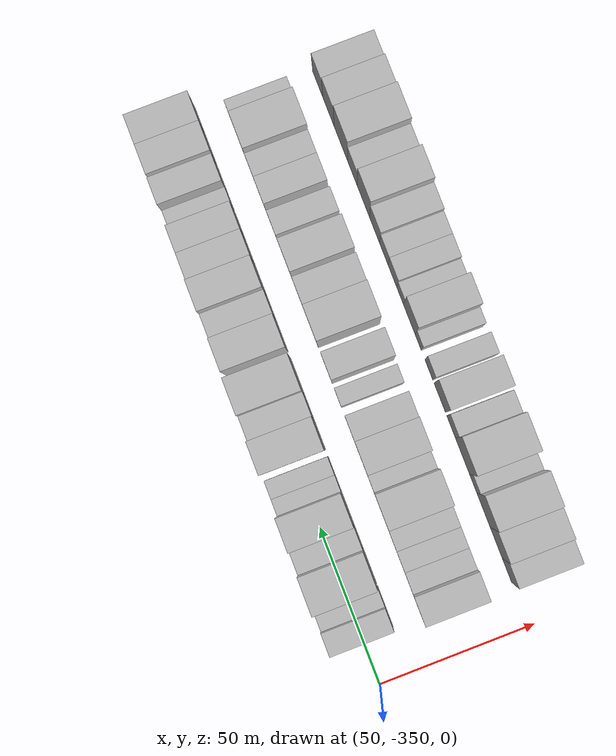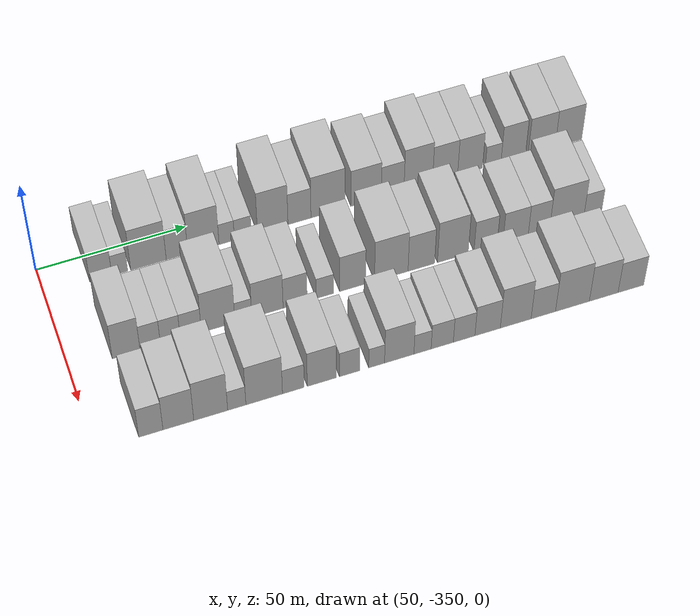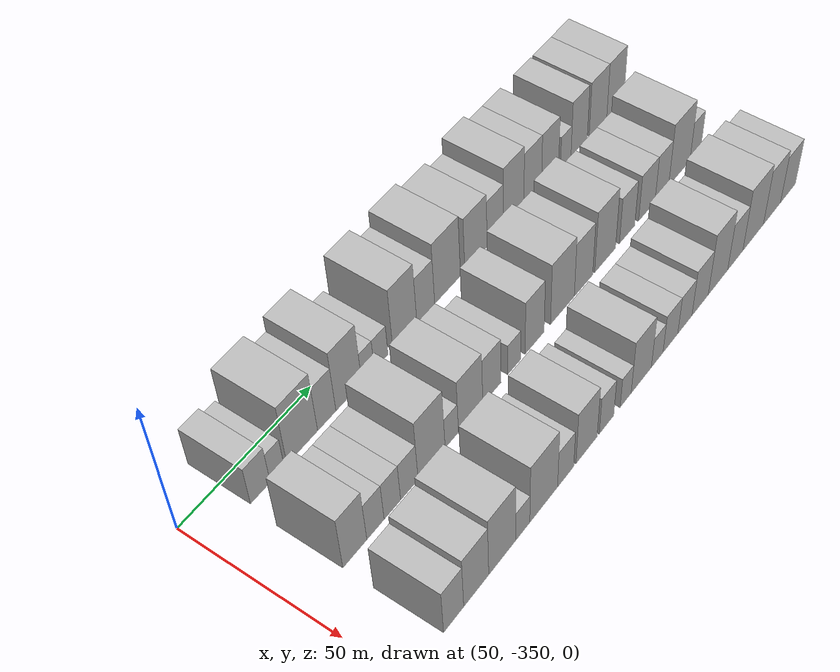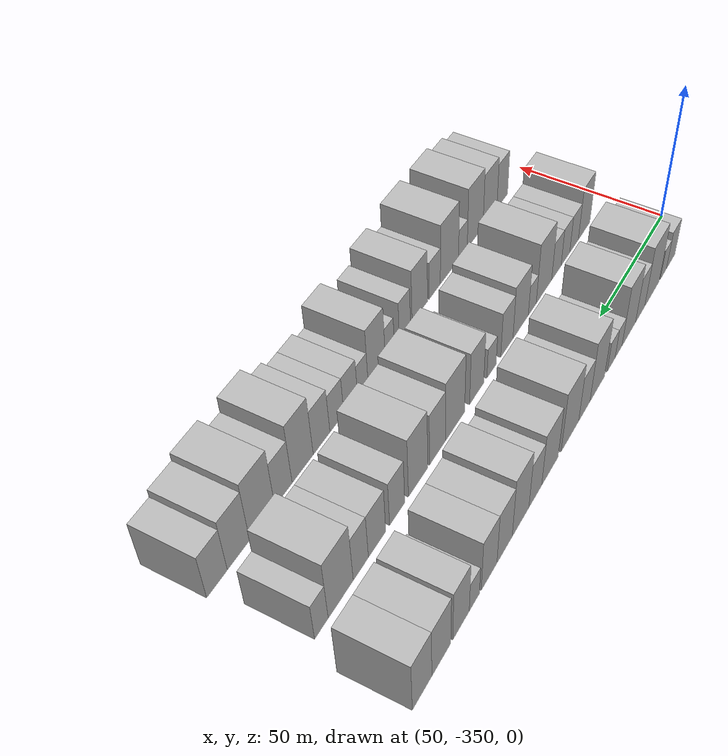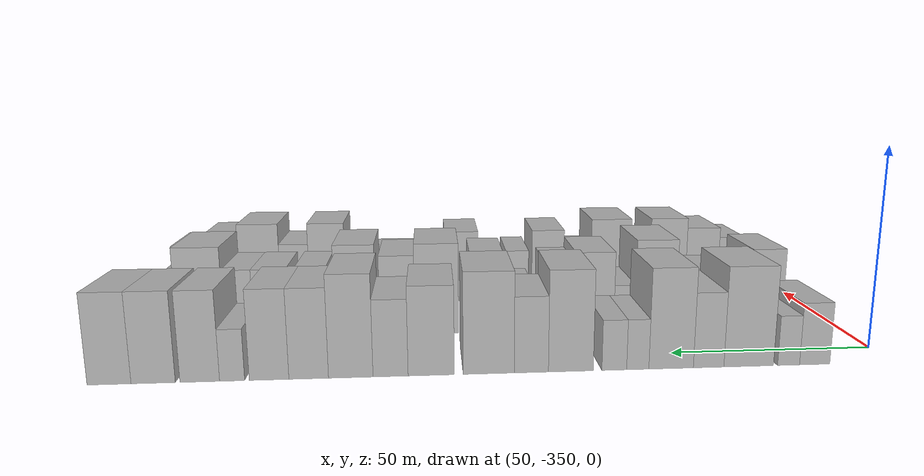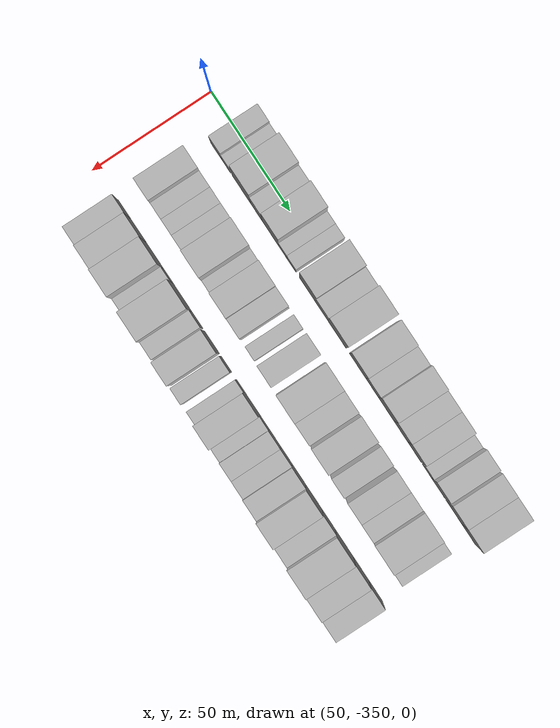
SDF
<sdf version="1.6">
 <world name="default">
  <model name="building_1">
   <static>1</static>
   <pose>50.0000 -331.3403 0 0.000000 0.000000 0.000000</pose>
   <link name="link">
    <pose>0 0 7.50 0 0 0</pose>
    <collision name="collision"><geometry><box><size>20.0000 7.3194 15.0000</size></box></geometry></collision>
    <visual name="visual">
     <cast_shadows>0</cast_shadows>
     <geometry><box><size>20.0000 7.3194 15.0000</size></box></geometry>
     <material>
      <script>
       <uri>model://HANNAS_wall/materials/scripts</uri>
       <uri>model://HANNAS_wall/materials/textures</uri>
       <name>vrc/HANNAS_wall</name>
      </script>
     </material>
    </visual>
   </link>
  </model>
  <model name="building_2">
   <static>1</static>
   <pose>50.0000 -325.0429 0 0.000000 0.000000 0.000000</pose>
   <link name="link">
    <pose>0 0 6.00 0 0 0</pose>
    <collision name="collision"><geometry><box><size>20.0000 5.2755 12.0000</size></box></geometry></collision>
    <visual name="visual">
     <cast_shadows>0</cast_shadows>
     <geometry><box><size>20.0000 5.2755 12.0000</size></box></geometry>
     <material>
      <script>
       <uri>model://HANNAS_wall/materials/scripts</uri>
       <uri>model://HANNAS_wall/materials/textures</uri>
       <name>vrc/HANNAS_wall</name>
      </script>
     </material>
    </visual>
   </link>
  </model>
  <model name="building_3">
   <static>1</static>
   <pose>50.0000 -315.4715 0 0.000000 0.000000 0.000000</pose>
   <link name="link">
    <pose>0 0 12.00 0 0 0</pose>
    <collision name="collision"><geometry><box><size>20.0000 11.8673 24.0000</size></box></geometry></collision>
    <visual name="visual">
     <cast_shadows>0</cast_shadows>
     <geometry><box><size>20.0000 11.8673 24.0000</size></box></geometry>
     <material>
      <script>
       <uri>model://HANNAS_wall/materials/scripts</uri>
       <uri>model://HANNAS_wall/materials/textures</uri>
       <name>vrc/HANNAS_wall</name>
      </script>
     </material>
    </visual>
   </link>
  </model>
  <model name="building_4">
   <static>1</static>
   <pose>50.0000 -305.9180 0 0.000000 0.000000 0.000000</pose>
   <link name="link">
    <pose>0 0 9.00 0 0 0</pose>
    <collision name="collision"><geometry><box><size>20.0000 7.2396 18.0000</size></box></geometry></collision>
    <visual name="visual">
     <cast_shadows>0</cast_shadows>
     <geometry><box><size>20.0000 7.2396 18.0000</size></box></geometry>
     <material>
      <script>
       <uri>model://HANNAS_wall/materials/scripts</uri>
       <uri>model://HANNAS_wall/materials/textures</uri>
       <name>vrc/HANNAS_wall</name>
      </script>
     </material>
    </visual>
   </link>
  </model>
  <model name="building_5">
   <static>1</static>
   <pose>50.0000 -297.0563 0 0.000000 0.000000 0.000000</pose>
   <link name="link">
    <pose>0 0 12.00 0 0 0</pose>
    <collision name="collision"><geometry><box><size>20.0000 10.4839 24.0000</size></box></geometry></collision>
    <visual name="visual">
     <cast_shadows>0</cast_shadows>
     <geometry><box><size>20.0000 10.4839 24.0000</size></box></geometry>
     <material>
      <script>
       <uri>model://HANNAS_wall/materials/scripts</uri>
       <uri>model://HANNAS_wall/materials/textures</uri>
       <name>vrc/HANNAS_wall</name>
      </script>
     </material>
    </visual>
   </link>
  </model>
  <model name="building_6">
   <static>1</static>
   <pose>50.0000 -289.2177 0 0.000000 0.000000 0.000000</pose>
   <link name="link">
    <pose>0 0 6.00 0 0 0</pose>
    <collision name="collision"><geometry><box><size>20.0000 5.1933 12.0000</size></box></geometry></collision>
    <visual name="visual">
     <cast_shadows>0</cast_shadows>
     <geometry><box><size>20.0000 5.1933 12.0000</size></box></geometry>
     <material>
      <script>
       <uri>model://HANNAS_wall/materials/scripts</uri>
       <uri>model://HANNAS_wall/materials/textures</uri>
       <name>vrc/HANNAS_wall</name>
      </script>
     </material>
    </visual>
   </link>
  </model>
  <model name="building_7">
   <static>1</static>
   <pose>50.0000 -283.7349 0 0.000000 0.000000 0.000000</pose>
   <link name="link">
    <pose>0 0 6.00 0 0 0</pose>
    <collision name="collision"><geometry><box><size>20.0000 5.7723 12.0000</size></box></geometry></collision>
    <visual name="visual">
     <cast_shadows>0</cast_shadows>
     <geometry><box><size>20.0000 5.7723 12.0000</size></box></geometry>
     <material>
      <script>
       <uri>model://HANNAS_wall/materials/scripts</uri>
       <uri>model://HANNAS_wall/materials/textures</uri>
       <name>vrc/HANNAS_wall</name>
      </script>
     </material>
    </visual>
   </link>
  </model>
  <model name="building_8">
   <static>1</static>
   <pose>50.0000 -273.6569 0 0.000000 0.000000 0.000000</pose>
   <link name="link">
    <pose>0 0 12.00 0 0 0</pose>
    <collision name="collision"><geometry><box><size>20.0000 10.3836 24.0000</size></box></geometry></collision>
    <visual name="visual">
     <cast_shadows>0</cast_shadows>
     <geometry><box><size>20.0000 10.3836 24.0000</size></box></geometry>
     <material>
      <script>
       <uri>model://HANNAS_wall/materials/scripts</uri>
       <uri>model://HANNAS_wall/materials/textures</uri>
       <name>vrc/HANNAS_wall</name>
      </script>
     </material>
    </visual>
   </link>
  </model>
  <model name="building_9">
   <static>1</static>
   <pose>50.0000 -264.5502 0 0.000000 0.000000 0.000000</pose>
   <link name="link">
    <pose>0 0 9.00 0 0 0</pose>
    <collision name="collision"><geometry><box><size>20.0000 7.8298 18.0000</size></box></geometry></collision>
    <visual name="visual">
     <cast_shadows>0</cast_shadows>
     <geometry><box><size>20.0000 7.8298 18.0000</size></box></geometry>
     <material>
      <script>
       <uri>model://HANNAS_wall/materials/scripts</uri>
       <uri>model://HANNAS_wall/materials/textures</uri>
       <name>vrc/HANNAS_wall</name>
      </script>
     </material>
    </visual>
   </link>
  </model>
  <model name="building_10">
   <static>1</static>
   <pose>50.0000 -254.8177 0 0.000000 0.000000 0.000000</pose>
   <link name="link">
    <pose>0 0 12.00 0 0 0</pose>
    <collision name="collision"><geometry><box><size>20.0000 11.6353 24.0000</size></box></geometry></collision>
    <visual name="visual">
     <cast_shadows>0</cast_shadows>
     <geometry><box><size>20.0000 11.6353 24.0000</size></box></geometry>
     <material>
      <script>
       <uri>model://HANNAS_wall/materials/scripts</uri>
       <uri>model://HANNAS_wall/materials/textures</uri>
       <name>vrc/HANNAS_wall</name>
      </script>
     </material>
    </visual>
   </link>
  </model>
  <model name="building_11">
   <static>1</static>
   <pose>50.0000 -241.7757 0 0.000000 0.000000 0.000000</pose>
   <link name="link">
    <pose>0 0 10.50 0 0 0</pose>
    <collision name="collision"><geometry><box><size>20.0000 10.4486 21.0000</size></box></geometry></collision>
    <visual name="visual">
     <cast_shadows>0</cast_shadows>
     <geometry><box><size>20.0000 10.4486 21.0000</size></box></geometry>
     <material>
      <script>
       <uri>model://HANNAS_wall/materials/scripts</uri>
       <uri>model://HANNAS_wall/materials/textures</uri>
       <name>vrc/HANNAS_wall</name>
      </script>
     </material>
    </visual>
   </link>
  </model>
  <model name="building_12">
   <static>1</static>
   <pose>50.0000 -232.6239 0 0.000000 0.000000 0.000000</pose>
   <link name="link">
    <pose>0 0 9.00 0 0 0</pose>
    <collision name="collision"><geometry><box><size>20.0000 7.8550 18.0000</size></box></geometry></collision>
    <visual name="visual">
     <cast_shadows>0</cast_shadows>
     <geometry><box><size>20.0000 7.8550 18.0000</size></box></geometry>
     <material>
      <script>
       <uri>model://HANNAS_wall/materials/scripts</uri>
       <uri>model://HANNAS_wall/materials/textures</uri>
       <name>vrc/HANNAS_wall</name>
      </script>
     </material>
    </visual>
   </link>
  </model>
  <model name="building_13">
   <static>1</static>
   <pose>50.0000 -223.7505 0 0.000000 0.000000 0.000000</pose>
   <link name="link">
    <pose>0 0 12.00 0 0 0</pose>
    <collision name="collision"><geometry><box><size>20.0000 9.8918 24.0000</size></box></geometry></collision>
    <visual name="visual">
     <cast_shadows>0</cast_shadows>
     <geometry><box><size>20.0000 9.8918 24.0000</size></box></geometry>
     <material>
      <script>
       <uri>model://HANNAS_wall/materials/scripts</uri>
       <uri>model://HANNAS_wall/materials/textures</uri>
       <name>vrc/HANNAS_wall</name>
      </script>
     </material>
    </visual>
   </link>
  </model>
  <model name="building_14">
   <static>1</static>
   <pose>50.0000 -214.4361 0 0.000000 0.000000 0.000000</pose>
   <link name="link">
    <pose>0 0 10.50 0 0 0</pose>
    <collision name="collision"><geometry><box><size>20.0000 8.7371 21.0000</size></box></geometry></collision>
    <visual name="visual">
     <cast_shadows>0</cast_shadows>
     <geometry><box><size>20.0000 8.7371 21.0000</size></box></geometry>
     <material>
      <script>
       <uri>model://HANNAS_wall/materials/scripts</uri>
       <uri>model://HANNAS_wall/materials/textures</uri>
       <name>vrc/HANNAS_wall</name>
      </script>
     </material>
    </visual>
   </link>
  </model>
  <model name="building_15">
   <static>1</static>
   <pose>50.0000 -205.7272 0 0.000000 0.000000 0.000000</pose>
   <link name="link">
    <pose>0 0 10.50 0 0 0</pose>
    <collision name="collision"><geometry><box><size>20.0000 8.6808 21.0000</size></box></geometry></collision>
    <visual name="visual">
     <cast_shadows>0</cast_shadows>
     <geometry><box><size>20.0000 8.6808 21.0000</size></box></geometry>
     <material>
      <script>
       <uri>model://HANNAS_wall/materials/scripts</uri>
       <uri>model://HANNAS_wall/materials/textures</uri>
       <name>vrc/HANNAS_wall</name>
      </script>
     </material>
    </visual>
   </link>
  </model>
  <model name="building_16">
   <static>1</static>
   <pose>50.0000 -197.6600 0 0.000000 0.000000 0.000000</pose>
   <link name="link">
    <pose>0 0 6.00 0 0 0</pose>
    <collision name="collision"><geometry><box><size>20.0000 5.4535 12.0000</size></box></geometry></collision>
    <visual name="visual">
     <cast_shadows>0</cast_shadows>
     <geometry><box><size>20.0000 5.4535 12.0000</size></box></geometry>
     <material>
      <script>
       <uri>model://HANNAS_wall/materials/scripts</uri>
       <uri>model://HANNAS_wall/materials/textures</uri>
       <name>vrc/HANNAS_wall</name>
      </script>
     </material>
    </visual>
   </link>
  </model>
  <model name="building_17">
   <static>1</static>
   <pose>50.0000 -190.6445 0 0.000000 0.000000 0.000000</pose>
   <link name="link">
    <pose>0 0 10.50 0 0 0</pose>
    <collision name="collision"><geometry><box><size>20.0000 8.5775 21.0000</size></box></geometry></collision>
    <visual name="visual">
     <cast_shadows>0</cast_shadows>
     <geometry><box><size>20.0000 8.5775 21.0000</size></box></geometry>
     <material>
      <script>
       <uri>model://HANNAS_wall/materials/scripts</uri>
       <uri>model://HANNAS_wall/materials/textures</uri>
       <name>vrc/HANNAS_wall</name>
      </script>
     </material>
    </visual>
   </link>
  </model>
  <model name="building_18">
   <static>1</static>
   <pose>50.0000 -180.6054 0 0.000000 0.000000 0.000000</pose>
   <link name="link">
    <pose>0 0 10.50 0 0 0</pose>
    <collision name="collision"><geometry><box><size>20.0000 9.5007 21.0000</size></box></geometry></collision>
    <visual name="visual">
     <cast_shadows>0</cast_shadows>
     <geometry><box><size>20.0000 9.5007 21.0000</size></box></geometry>
     <material>
      <script>
       <uri>model://HANNAS_wall/materials/scripts</uri>
       <uri>model://HANNAS_wall/materials/textures</uri>
       <name>vrc/HANNAS_wall</name>
      </script>
     </material>
    </visual>
   </link>
  </model>
  <model name="building_19">
   <static>1</static>
   <pose>50.0000 -171.1676 0 0.000000 0.000000 0.000000</pose>
   <link name="link">
    <pose>0 0 10.50 0 0 0</pose>
    <collision name="collision"><geometry><box><size>20.0000 9.3747 21.0000</size></box></geometry></collision>
    <visual name="visual">
     <cast_shadows>0</cast_shadows>
     <geometry><box><size>20.0000 9.3747 21.0000</size></box></geometry>
     <material>
      <script>
       <uri>model://HANNAS_wall/materials/scripts</uri>
       <uri>model://HANNAS_wall/materials/textures</uri>
       <name>vrc/HANNAS_wall</name>
      </script>
     </material>
    </visual>
   </link>
  </model>
  <model name="building_74">
   <static>1</static>
   <pose>79.0000 -331.4682 0 0.000000 0.000000 0.000000</pose>
   <link name="link">
    <pose>0 0 10.50 0 0 0</pose>
    <collision name="collision"><geometry><box><size>20.0000 9.0637 21.0000</size></box></geometry></collision>
    <visual name="visual">
     <cast_shadows>0</cast_shadows>
     <geometry><box><size>20.0000 9.0637 21.0000</size></box></geometry>
     <material>
      <script>
       <uri>model://HANNAS_wall/materials/scripts</uri>
       <uri>model://HANNAS_wall/materials/textures</uri>
       <name>vrc/HANNAS_wall</name>
      </script>
     </material>
    </visual>
   </link>
  </model>
  <model name="building_75">
   <static>1</static>
   <pose>79.0000 -323.6014 0 0.000000 0.000000 0.000000</pose>
   <link name="link">
    <pose>0 0 7.50 0 0 0</pose>
    <collision name="collision"><geometry><box><size>20.0000 6.6699 15.0000</size></box></geometry></collision>
    <visual name="visual">
     <cast_shadows>0</cast_shadows>
     <geometry><box><size>20.0000 6.6699 15.0000</size></box></geometry>
     <material>
      <script>
       <uri>model://HANNAS_wall/materials/scripts</uri>
       <uri>model://HANNAS_wall/materials/textures</uri>
       <name>vrc/HANNAS_wall</name>
      </script>
     </material>
    </visual>
   </link>
  </model>
  <model name="building_76">
   <static>1</static>
   <pose>79.0000 -317.0089 0 0.000000 0.000000 0.000000</pose>
   <link name="link">
    <pose>0 0 7.50 0 0 0</pose>
    <collision name="collision"><geometry><box><size>20.0000 6.5151 15.0000</size></box></geometry></collision>
    <visual name="visual">
     <cast_shadows>0</cast_shadows>
     <geometry><box><size>20.0000 6.5151 15.0000</size></box></geometry>
     <material>
      <script>
       <uri>model://HANNAS_wall/materials/scripts</uri>
       <uri>model://HANNAS_wall/materials/textures</uri>
       <name>vrc/HANNAS_wall</name>
      </script>
     </material>
    </visual>
   </link>
  </model>
  <model name="building_77">
   <static>1</static>
   <pose>79.0000 -310.2614 0 0.000000 0.000000 0.000000</pose>
   <link name="link">
    <pose>0 0 7.50 0 0 0</pose>
    <collision name="collision"><geometry><box><size>20.0000 6.9800 15.0000</size></box></geometry></collision>
    <visual name="visual">
     <cast_shadows>0</cast_shadows>
     <geometry><box><size>20.0000 6.9800 15.0000</size></box></geometry>
     <material>
      <script>
       <uri>model://HANNAS_wall/materials/scripts</uri>
       <uri>model://HANNAS_wall/materials/textures</uri>
       <name>vrc/HANNAS_wall</name>
      </script>
     </material>
    </visual>
   </link>
  </model>
  <model name="building_78">
   <static>1</static>
   <pose>79.0000 -301.2172 0 0.000000 0.000000 0.000000</pose>
   <link name="link">
    <pose>0 0 12.00 0 0 0</pose>
    <collision name="collision"><geometry><box><size>20.0000 11.1084 24.0000</size></box></geometry></collision>
    <visual name="visual">
     <cast_shadows>0</cast_shadows>
     <geometry><box><size>20.0000 11.1084 24.0000</size></box></geometry>
     <material>
      <script>
       <uri>model://HANNAS_wall/materials/scripts</uri>
       <uri>model://HANNAS_wall/materials/textures</uri>
       <name>vrc/HANNAS_wall</name>
      </script>
     </material>
    </visual>
   </link>
  </model>
  <model name="building_79">
   <static>1</static>
   <pose>79.0000 -292.8633 0 0.000000 0.000000 0.000000</pose>
   <link name="link">
    <pose>0 0 6.00 0 0 0</pose>
    <collision name="collision"><geometry><box><size>20.0000 5.5992 12.0000</size></box></geometry></collision>
    <visual name="visual">
     <cast_shadows>0</cast_shadows>
     <geometry><box><size>20.0000 5.5992 12.0000</size></box></geometry>
     <material>
      <script>
       <uri>model://HANNAS_wall/materials/scripts</uri>
       <uri>model://HANNAS_wall/materials/textures</uri>
       <name>vrc/HANNAS_wall</name>
      </script>
     </material>
    </visual>
   </link>
  </model>
  <model name="building_80">
   <static>1</static>
   <pose>79.0000 -284.8547 0 0.000000 0.000000 0.000000</pose>
   <link name="link">
    <pose>0 0 10.50 0 0 0</pose>
    <collision name="collision"><geometry><box><size>20.0000 10.4182 21.0000</size></box></geometry></collision>
    <visual name="visual">
     <cast_shadows>0</cast_shadows>
     <geometry><box><size>20.0000 10.4182 21.0000</size></box></geometry>
     <material>
      <script>
       <uri>model://HANNAS_wall/materials/scripts</uri>
       <uri>model://HANNAS_wall/materials/textures</uri>
       <name>vrc/HANNAS_wall</name>
      </script>
     </material>
    </visual>
   </link>
  </model>
  <model name="building_81">
   <static>1</static>
   <pose>79.0000 -275.6218 0 0.000000 0.000000 0.000000</pose>
   <link name="link">
    <pose>0 0 9.00 0 0 0</pose>
    <collision name="collision"><geometry><box><size>20.0000 8.0475 18.0000</size></box></geometry></collision>
    <visual name="visual">
     <cast_shadows>0</cast_shadows>
     <geometry><box><size>20.0000 8.0475 18.0000</size></box></geometry>
     <material>
      <script>
       <uri>model://HANNAS_wall/materials/scripts</uri>
       <uri>model://HANNAS_wall/materials/textures</uri>
       <name>vrc/HANNAS_wall</name>
      </script>
     </material>
    </visual>
   </link>
  </model>
  <model name="building_82">
   <static>1</static>
   <pose>79.0000 -265.6651 0 0.000000 0.000000 0.000000</pose>
   <link name="link">
    <pose>0 0 6.00 0 0 0</pose>
    <collision name="collision"><geometry><box><size>20.0000 5.8658 12.0000</size></box></geometry></collision>
    <visual name="visual">
     <cast_shadows>0</cast_shadows>
     <geometry><box><size>20.0000 5.8658 12.0000</size></box></geometry>
     <material>
      <script>
       <uri>model://HANNAS_wall/materials/scripts</uri>
       <uri>model://HANNAS_wall/materials/textures</uri>
       <name>vrc/HANNAS_wall</name>
      </script>
     </material>
    </visual>
   </link>
  </model>
  <model name="building_83">
   <static>1</static>
   <pose>79.0000 -256.3546 0 0.000000 0.000000 0.000000</pose>
   <link name="link">
    <pose>0 0 10.50 0 0 0</pose>
    <collision name="collision"><geometry><box><size>20.0000 8.7552 21.0000</size></box></geometry></collision>
    <visual name="visual">
     <cast_shadows>0</cast_shadows>
     <geometry><box><size>20.0000 8.7552 21.0000</size></box></geometry>
     <material>
      <script>
       <uri>model://HANNAS_wall/materials/scripts</uri>
       <uri>model://HANNAS_wall/materials/textures</uri>
       <name>vrc/HANNAS_wall</name>
      </script>
     </material>
    </visual>
   </link>
  </model>
  <model name="building_84">
   <static>1</static>
   <pose>79.0000 -243.2946 0 0.000000 0.000000 0.000000</pose>
   <link name="link">
    <pose>0 0 12.00 0 0 0</pose>
    <collision name="collision"><geometry><box><size>20.0000 11.3648 24.0000</size></box></geometry></collision>
    <visual name="visual">
     <cast_shadows>0</cast_shadows>
     <geometry><box><size>20.0000 11.3648 24.0000</size></box></geometry>
     <material>
      <script>
       <uri>model://HANNAS_wall/materials/scripts</uri>
       <uri>model://HANNAS_wall/materials/textures</uri>
       <name>vrc/HANNAS_wall</name>
      </script>
     </material>
    </visual>
   </link>
  </model>
  <model name="building_85">
   <static>1</static>
   <pose>79.0000 -233.1048 0 0.000000 0.000000 0.000000</pose>
   <link name="link">
    <pose>0 0 10.50 0 0 0</pose>
    <collision name="collision"><geometry><box><size>20.0000 9.0148 21.0000</size></box></geometry></collision>
    <visual name="visual">
     <cast_shadows>0</cast_shadows>
     <geometry><box><size>20.0000 9.0148 21.0000</size></box></geometry>
     <material>
      <script>
       <uri>model://HANNAS_wall/materials/scripts</uri>
       <uri>model://HANNAS_wall/materials/textures</uri>
       <name>vrc/HANNAS_wall</name>
      </script>
     </material>
    </visual>
   </link>
  </model>
  <model name="building_86">
   <static>1</static>
   <pose>79.0000 -222.3572 0 0.000000 0.000000 0.000000</pose>
   <link name="link">
    <pose>0 0 12.00 0 0 0</pose>
    <collision name="collision"><geometry><box><size>20.0000 10.4803 24.0000</size></box></geometry></collision>
    <visual name="visual">
     <cast_shadows>0</cast_shadows>
     <geometry><box><size>20.0000 10.4803 24.0000</size></box></geometry>
     <material>
      <script>
       <uri>model://HANNAS_wall/materials/scripts</uri>
       <uri>model://HANNAS_wall/materials/textures</uri>
       <name>vrc/HANNAS_wall</name>
      </script>
     </material>
    </visual>
   </link>
  </model>
  <model name="building_87">
   <static>1</static>
   <pose>79.0000 -211.1659 0 0.000000 0.000000 0.000000</pose>
   <link name="link">
    <pose>0 0 9.00 0 0 0</pose>
    <collision name="collision"><geometry><box><size>20.0000 7.9023 18.0000</size></box></geometry></collision>
    <visual name="visual">
     <cast_shadows>0</cast_shadows>
     <geometry><box><size>20.0000 7.9023 18.0000</size></box></geometry>
     <material>
      <script>
       <uri>model://HANNAS_wall/materials/scripts</uri>
       <uri>model://HANNAS_wall/materials/textures</uri>
       <name>vrc/HANNAS_wall</name>
      </script>
     </material>
    </visual>
   </link>
  </model>
  <model name="building_88">
   <static>1</static>
   <pose>79.0000 -200.8583 0 0.000000 0.000000 0.000000</pose>
   <link name="link">
    <pose>0 0 9.00 0 0 0</pose>
    <collision name="collision"><geometry><box><size>20.0000 8.7130 18.0000</size></box></geometry></collision>
    <visual name="visual">
     <cast_shadows>0</cast_shadows>
     <geometry><box><size>20.0000 8.7130 18.0000</size></box></geometry>
     <material>
      <script>
       <uri>model://HANNAS_wall/materials/scripts</uri>
       <uri>model://HANNAS_wall/materials/textures</uri>
       <name>vrc/HANNAS_wall</name>
      </script>
     </material>
    </visual>
   </link>
  </model>
  <model name="building_89">
   <static>1</static>
   <pose>79.0000 -192.8027 0 0.000000 0.000000 0.000000</pose>
   <link name="link">
    <pose>0 0 9.00 0 0 0</pose>
    <collision name="collision"><geometry><box><size>20.0000 7.3981 18.0000</size></box></geometry></collision>
    <visual name="visual">
     <cast_shadows>0</cast_shadows>
     <geometry><box><size>20.0000 7.3981 18.0000</size></box></geometry>
     <material>
      <script>
       <uri>model://HANNAS_wall/materials/scripts</uri>
       <uri>model://HANNAS_wall/materials/textures</uri>
       <name>vrc/HANNAS_wall</name>
      </script>
     </material>
    </visual>
   </link>
  </model>
  <model name="building_90">
   <static>1</static>
   <pose>79.0000 -183.2197 0 0.000000 0.000000 0.000000</pose>
   <link name="link">
    <pose>0 0 12.00 0 0 0</pose>
    <collision name="collision"><geometry><box><size>20.0000 11.7679 24.0000</size></box></geometry></collision>
    <visual name="visual">
     <cast_shadows>0</cast_shadows>
     <geometry><box><size>20.0000 11.7679 24.0000</size></box></geometry>
     <material>
      <script>
       <uri>model://HANNAS_wall/materials/scripts</uri>
       <uri>model://HANNAS_wall/materials/textures</uri>
       <name>vrc/HANNAS_wall</name>
      </script>
     </material>
    </visual>
   </link>
  </model>
  <model name="building_91">
   <static>1</static>
   <pose>79.0000 -174.2411 0 0.000000 0.000000 0.000000</pose>
   <link name="link">
    <pose>0 0 7.50 0 0 0</pose>
    <collision name="collision"><geometry><box><size>20.0000 6.1894 15.0000</size></box></geometry></collision>
    <visual name="visual">
     <cast_shadows>0</cast_shadows>
     <geometry><box><size>20.0000 6.1894 15.0000</size></box></geometry>
     <material>
      <script>
       <uri>model://HANNAS_wall/materials/scripts</uri>
       <uri>model://HANNAS_wall/materials/textures</uri>
       <name>vrc/HANNAS_wall</name>
      </script>
     </material>
    </visual>
   </link>
  </model>
  <model name="building_144">
   <static>1</static>
   <pose>108.0000 -332.0964 0 0.000000 0.000000 0.000000</pose>
   <link name="link">
    <pose>0 0 9.00 0 0 0</pose>
    <collision name="collision"><geometry><box><size>20.0000 7.8072 18.0000</size></box></geometry></collision>
    <visual name="visual">
     <cast_shadows>0</cast_shadows>
     <geometry><box><size>20.0000 7.8072 18.0000</size></box></geometry>
     <material>
      <script>
       <uri>model://HANNAS_wall/materials/scripts</uri>
       <uri>model://HANNAS_wall/materials/textures</uri>
       <name>vrc/HANNAS_wall</name>
      </script>
     </material>
    </visual>
   </link>
  </model>
  <model name="building_145">
   <static>1</static>
   <pose>108.0000 -323.2257 0 0.000000 0.000000 0.000000</pose>
   <link name="link">
    <pose>0 0 10.50 0 0 0</pose>
    <collision name="collision"><geometry><box><size>20.0000 9.9342 21.0000</size></box></geometry></collision>
    <visual name="visual">
     <cast_shadows>0</cast_shadows>
     <geometry><box><size>20.0000 9.9342 21.0000</size></box></geometry>
     <material>
      <script>
       <uri>model://HANNAS_wall/materials/scripts</uri>
       <uri>model://HANNAS_wall/materials/textures</uri>
       <name>vrc/HANNAS_wall</name>
      </script>
     </material>
    </visual>
   </link>
  </model>
  <model name="building_146">
   <static>1</static>
   <pose>108.0000 -312.7596 0 0.000000 0.000000 0.000000</pose>
   <link name="link">
    <pose>0 0 12.00 0 0 0</pose>
    <collision name="collision"><geometry><box><size>20.0000 10.9979 24.0000</size></box></geometry></collision>
    <visual name="visual">
     <cast_shadows>0</cast_shadows>
     <geometry><box><size>20.0000 10.9979 24.0000</size></box></geometry>
     <material>
      <script>
       <uri>model://HANNAS_wall/materials/scripts</uri>
       <uri>model://HANNAS_wall/materials/textures</uri>
       <name>vrc/HANNAS_wall</name>
      </script>
     </material>
    </visual>
   </link>
  </model>
  <model name="building_147">
   <static>1</static>
   <pose>108.0000 -304.2958 0 0.000000 0.000000 0.000000</pose>
   <link name="link">
    <pose>0 0 6.00 0 0 0</pose>
    <collision name="collision"><geometry><box><size>20.0000 5.9297 12.0000</size></box></geometry></collision>
    <visual name="visual">
     <cast_shadows>0</cast_shadows>
     <geometry><box><size>20.0000 5.9297 12.0000</size></box></geometry>
     <material>
      <script>
       <uri>model://HANNAS_wall/materials/scripts</uri>
       <uri>model://HANNAS_wall/materials/textures</uri>
       <name>vrc/HANNAS_wall</name>
      </script>
     </material>
    </visual>
   </link>
  </model>
  <model name="building_148">
   <static>1</static>
   <pose>108.0000 -295.3599 0 0.000000 0.000000 0.000000</pose>
   <link name="link">
    <pose>0 0 12.00 0 0 0</pose>
    <collision name="collision"><geometry><box><size>20.0000 11.9420 24.0000</size></box></geometry></collision>
    <visual name="visual">
     <cast_shadows>0</cast_shadows>
     <geometry><box><size>20.0000 11.9420 24.0000</size></box></geometry>
     <material>
      <script>
       <uri>model://HANNAS_wall/materials/scripts</uri>
       <uri>model://HANNAS_wall/materials/textures</uri>
       <name>vrc/HANNAS_wall</name>
      </script>
     </material>
    </visual>
   </link>
  </model>
  <model name="building_149">
   <static>1</static>
   <pose>108.0000 -285.8260 0 0.000000 0.000000 0.000000</pose>
   <link name="link">
    <pose>0 0 7.50 0 0 0</pose>
    <collision name="collision"><geometry><box><size>20.0000 7.1258 15.0000</size></box></geometry></collision>
    <visual name="visual">
     <cast_shadows>0</cast_shadows>
     <geometry><box><size>20.0000 7.1258 15.0000</size></box></geometry>
     <material>
      <script>
       <uri>model://HANNAS_wall/materials/scripts</uri>
       <uri>model://HANNAS_wall/materials/textures</uri>
       <name>vrc/HANNAS_wall</name>
      </script>
     </material>
    </visual>
   </link>
  </model>
  <model name="building_150">
   <static>1</static>
   <pose>108.0000 -276.4812 0 0.000000 0.000000 0.000000</pose>
   <link name="link">
    <pose>0 0 10.50 0 0 0</pose>
    <collision name="collision"><geometry><box><size>20.0000 9.5638 21.0000</size></box></geometry></collision>
    <visual name="visual">
     <cast_shadows>0</cast_shadows>
     <geometry><box><size>20.0000 9.5638 21.0000</size></box></geometry>
     <material>
      <script>
       <uri>model://HANNAS_wall/materials/scripts</uri>
       <uri>model://HANNAS_wall/materials/textures</uri>
       <name>vrc/HANNAS_wall</name>
      </script>
     </material>
    </visual>
   </link>
  </model>
  <model name="building_151">
   <static>1</static>
   <pose>108.0000 -267.3510 0 0.000000 0.000000 0.000000</pose>
   <link name="link">
    <pose>0 0 7.50 0 0 0</pose>
    <collision name="collision"><geometry><box><size>20.0000 6.6968 15.0000</size></box></geometry></collision>
    <visual name="visual">
     <cast_shadows>0</cast_shadows>
     <geometry><box><size>20.0000 6.6968 15.0000</size></box></geometry>
     <material>
      <script>
       <uri>model://HANNAS_wall/materials/scripts</uri>
       <uri>model://HANNAS_wall/materials/textures</uri>
       <name>vrc/HANNAS_wall</name>
      </script>
     </material>
    </visual>
   </link>
  </model>
  <model name="building_152">
   <static>1</static>
   <pose>108.0000 -258.3854 0 0.000000 0.000000 0.000000</pose>
   <link name="link">
    <pose>0 0 6.00 0 0 0</pose>
    <collision name="collision"><geometry><box><size>20.0000 5.2343 12.0000</size></box></geometry></collision>
    <visual name="visual">
     <cast_shadows>0</cast_shadows>
     <geometry><box><size>20.0000 5.2343 12.0000</size></box></geometry>
     <material>
      <script>
       <uri>model://HANNAS_wall/materials/scripts</uri>
       <uri>model://HANNAS_wall/materials/textures</uri>
       <name>vrc/HANNAS_wall</name>
      </script>
     </material>
    </visual>
   </link>
  </model>
  <model name="building_153">
   <static>1</static>
   <pose>108.0000 -250.8773 0 0.000000 0.000000 0.000000</pose>
   <link name="link">
    <pose>0 0 10.50 0 0 0</pose>
    <collision name="collision"><geometry><box><size>20.0000 9.7820 21.0000</size></box></geometry></collision>
    <visual name="visual">
     <cast_shadows>0</cast_shadows>
     <geometry><box><size>20.0000 9.7820 21.0000</size></box></geometry>
     <material>
      <script>
       <uri>model://HANNAS_wall/materials/scripts</uri>
       <uri>model://HANNAS_wall/materials/textures</uri>
       <name>vrc/HANNAS_wall</name>
      </script>
     </material>
    </visual>
   </link>
  </model>
  <model name="building_154">
   <static>1</static>
   <pose>108.0000 -243.1158 0 0.000000 0.000000 0.000000</pose>
   <link name="link">
    <pose>0 0 6.00 0 0 0</pose>
    <collision name="collision"><geometry><box><size>20.0000 5.7410 12.0000</size></box></geometry></collision>
    <visual name="visual">
     <cast_shadows>0</cast_shadows>
     <geometry><box><size>20.0000 5.7410 12.0000</size></box></geometry>
     <material>
      <script>
       <uri>model://HANNAS_wall/materials/scripts</uri>
       <uri>model://HANNAS_wall/materials/textures</uri>
       <name>vrc/HANNAS_wall</name>
      </script>
     </material>
    </visual>
   </link>
  </model>
  <model name="building_155">
   <static>1</static>
   <pose>108.0000 -236.5324 0 0.000000 0.000000 0.000000</pose>
   <link name="link">
    <pose>0 0 7.50 0 0 0</pose>
    <collision name="collision"><geometry><box><size>20.0000 7.4257 15.0000</size></box></geometry></collision>
    <visual name="visual">
     <cast_shadows>0</cast_shadows>
     <geometry><box><size>20.0000 7.4257 15.0000</size></box></geometry>
     <material>
      <script>
       <uri>model://HANNAS_wall/materials/scripts</uri>
       <uri>model://HANNAS_wall/materials/textures</uri>
       <name>vrc/HANNAS_wall</name>
      </script>
     </material>
    </visual>
   </link>
  </model>
  <model name="building_156">
   <static>1</static>
   <pose>108.0000 -229.1937 0 0.000000 0.000000 0.000000</pose>
   <link name="link">
    <pose>0 0 7.50 0 0 0</pose>
    <collision name="collision"><geometry><box><size>20.0000 7.2518 15.0000</size></box></geometry></collision>
    <visual name="visual">
     <cast_shadows>0</cast_shadows>
     <geometry><box><size>20.0000 7.2518 15.0000</size></box></geometry>
     <material>
      <script>
       <uri>model://HANNAS_wall/materials/scripts</uri>
       <uri>model://HANNAS_wall/materials/textures</uri>
       <name>vrc/HANNAS_wall</name>
      </script>
     </material>
    </visual>
   </link>
  </model>
  <model name="building_157">
   <static>1</static>
   <pose>108.0000 -221.3040 0 0.000000 0.000000 0.000000</pose>
   <link name="link">
    <pose>0 0 9.00 0 0 0</pose>
    <collision name="collision"><geometry><box><size>20.0000 8.5275 18.0000</size></box></geometry></collision>
    <visual name="visual">
     <cast_shadows>0</cast_shadows>
     <geometry><box><size>20.0000 8.5275 18.0000</size></box></geometry>
     <material>
      <script>
       <uri>model://HANNAS_wall/materials/scripts</uri>
       <uri>model://HANNAS_wall/materials/textures</uri>
       <name>vrc/HANNAS_wall</name>
      </script>
     </material>
    </visual>
   </link>
  </model>
  <model name="building_158">
   <static>1</static>
   <pose>108.0000 -211.8355 0 0.000000 0.000000 0.000000</pose>
   <link name="link">
    <pose>0 0 12.00 0 0 0</pose>
    <collision name="collision"><geometry><box><size>20.0000 10.4095 24.0000</size></box></geometry></collision>
    <visual name="visual">
     <cast_shadows>0</cast_shadows>
     <geometry><box><size>20.0000 10.4095 24.0000</size></box></geometry>
     <material>
      <script>
       <uri>model://HANNAS_wall/materials/scripts</uri>
       <uri>model://HANNAS_wall/materials/textures</uri>
       <name>vrc/HANNAS_wall</name>
      </script>
     </material>
    </visual>
   </link>
  </model>
  <model name="building_159">
   <static>1</static>
   <pose>108.0000 -202.4871 0 0.000000 0.000000 0.000000</pose>
   <link name="link">
    <pose>0 0 9.00 0 0 0</pose>
    <collision name="collision"><geometry><box><size>20.0000 8.2873 18.0000</size></box></geometry></collision>
    <visual name="visual">
     <cast_shadows>0</cast_shadows>
     <geometry><box><size>20.0000 8.2873 18.0000</size></box></geometry>
     <material>
      <script>
       <uri>model://HANNAS_wall/materials/scripts</uri>
       <uri>model://HANNAS_wall/materials/textures</uri>
       <name>vrc/HANNAS_wall</name>
      </script>
     </material>
    </visual>
   </link>
  </model>
  <model name="building_160">
   <static>1</static>
   <pose>108.0000 -192.5781 0 0.000000 0.000000 0.000000</pose>
   <link name="link">
    <pose>0 0 12.00 0 0 0</pose>
    <collision name="collision"><geometry><box><size>20.0000 11.5308 24.0000</size></box></geometry></collision>
    <visual name="visual">
     <cast_shadows>0</cast_shadows>
     <geometry><box><size>20.0000 11.5308 24.0000</size></box></geometry>
     <material>
      <script>
       <uri>model://HANNAS_wall/materials/scripts</uri>
       <uri>model://HANNAS_wall/materials/textures</uri>
       <name>vrc/HANNAS_wall</name>
      </script>
     </material>
    </visual>
   </link>
  </model>
  <model name="building_161">
   <static>1</static>
   <pose>108.0000 -181.9052 0 0.000000 0.000000 0.000000</pose>
   <link name="link">
    <pose>0 0 10.50 0 0 0</pose>
    <collision name="collision"><geometry><box><size>20.0000 9.8149 21.0000</size></box></geometry></collision>
    <visual name="visual">
     <cast_shadows>0</cast_shadows>
     <geometry><box><size>20.0000 9.8149 21.0000</size></box></geometry>
     <material>
      <script>
       <uri>model://HANNAS_wall/materials/scripts</uri>
       <uri>model://HANNAS_wall/materials/textures</uri>
       <name>vrc/HANNAS_wall</name>
      </script>
     </material>
    </visual>
   </link>
  </model>
  <model name="building_162">
   <static>1</static>
   <pose>108.0000 -172.5972 0 0.000000 0.000000 0.000000</pose>
   <link name="link">
    <pose>0 0 9.00 0 0 0</pose>
    <collision name="collision"><geometry><box><size>20.0000 8.8010 18.0000</size></box></geometry></collision>
    <visual name="visual">
     <cast_shadows>0</cast_shadows>
     <geometry><box><size>20.0000 8.8010 18.0000</size></box></geometry>
     <material>
      <script>
       <uri>model://HANNAS_wall/materials/scripts</uri>
       <uri>model://HANNAS_wall/materials/textures</uri>
       <name>vrc/HANNAS_wall</name>
      </script>
     </material>
    </visual>
   </link>
  </model>
 </world>
</sdf>
